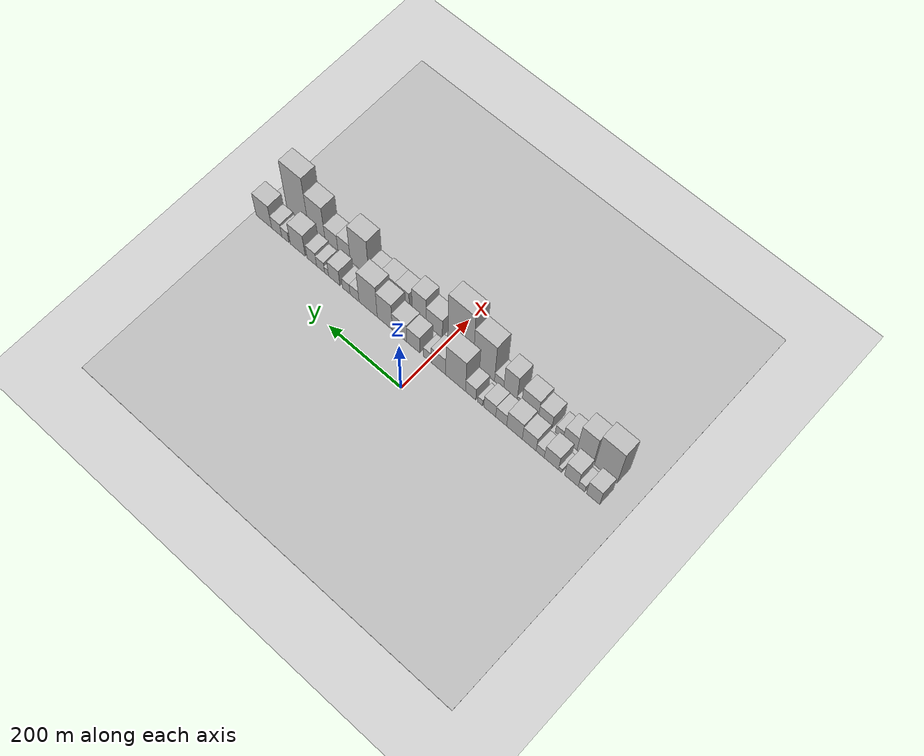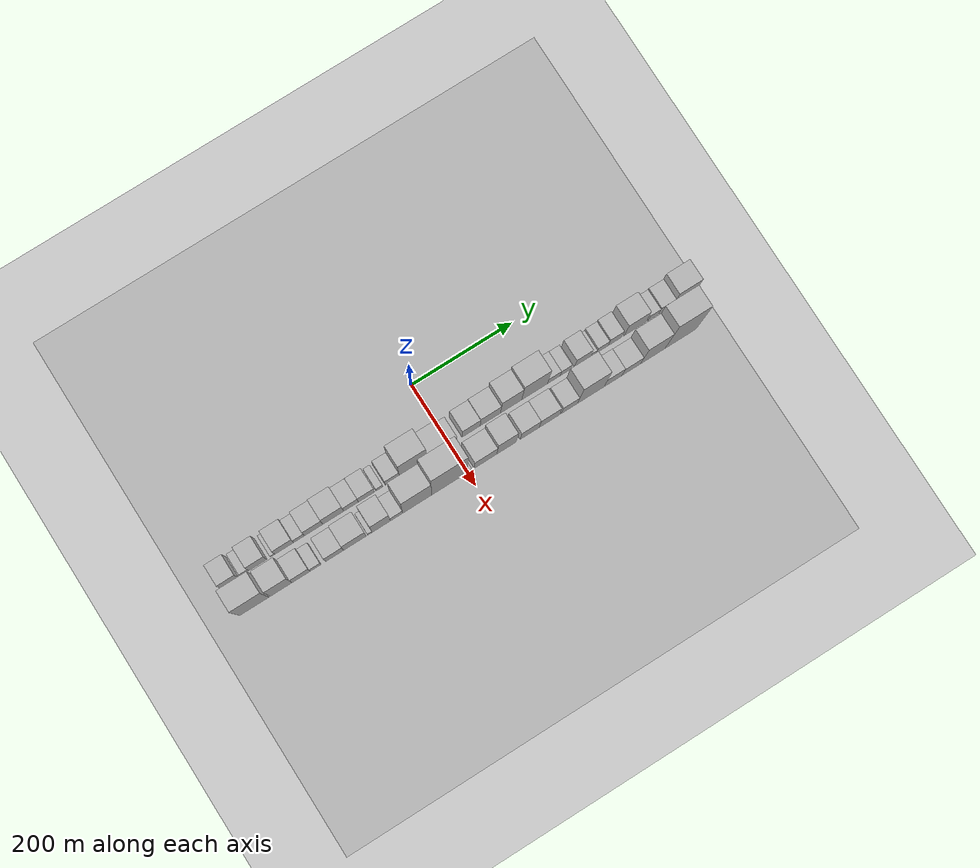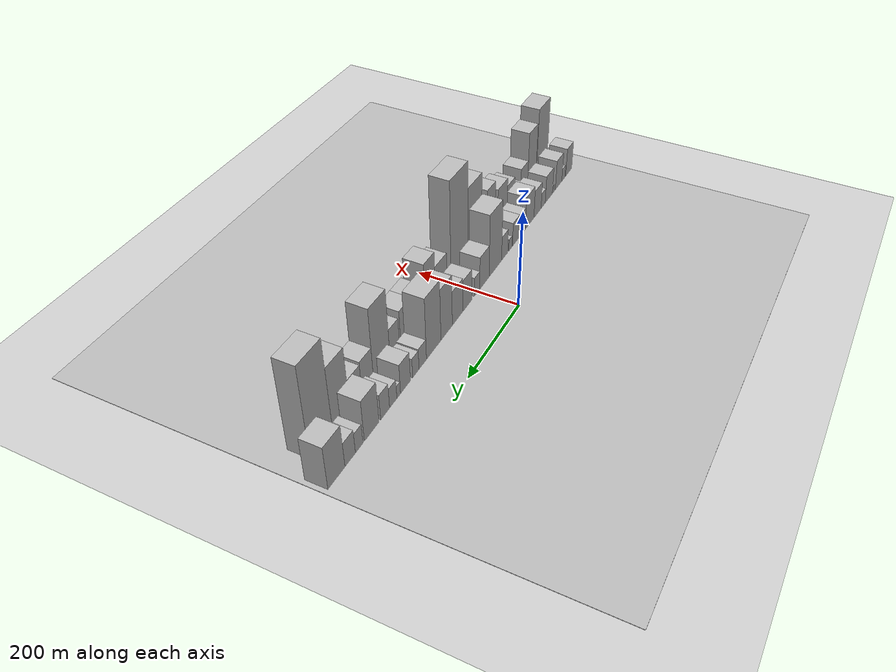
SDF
<sdf version="1.6">
 <world name="default">
  <include><name>ground_plane_1</name><uri>model://HANNAS_ground_plane</uri></include>
  <include>
   <name>ground_plane_2</name>
   <uri>model://HANNAS_ground_plane</uri>
   <pose>100 0 0  0 0 0</pose>
  </include>
  <model name="building_1">
   <static>1</static>
   <pose>100.0000 -429.2863 0 0.000000 0.000000 0.000000</pose>
   <link name="link">
    <pose>0 0 33.00 0 0 0</pose>
    <collision name="collision"><geometry><box><size>40.0000 33.4274 66.0000</size></box></geometry></collision>
    <visual name="visual">
     <cast_shadows>0</cast_shadows>
     <geometry><box><size>40.0000 33.4274 66.0000</size></box></geometry>
     <material>
      <script>
       <uri>model://HANNAS_wall/materials/scripts</uri>
       <uri>model://HANNAS_wall/materials/textures</uri>
       <name>vrc/HANNAS_wall</name>
      </script>
     </material>
    </visual>
   </link>
  </model>
  <model name="building_2">
   <static>1</static>
   <pose>100.0000 -400.2123 0 0.000000 0.000000 0.000000</pose>
   <link name="link">
    <pose>0 0 15.00 0 0 0</pose>
    <collision name="collision"><geometry><box><size>40.0000 16.7206 30.0000</size></box></geometry></collision>
    <visual name="visual">
     <cast_shadows>0</cast_shadows>
     <geometry><box><size>40.0000 16.7206 30.0000</size></box></geometry>
     <material>
      <script>
       <uri>model://HANNAS_wall/materials/scripts</uri>
       <uri>model://HANNAS_wall/materials/textures</uri>
       <name>vrc/HANNAS_wall</name>
      </script>
     </material>
    </visual>
   </link>
  </model>
  <model name="building_3">
   <static>1</static>
   <pose>100.0000 -374.4812 0 0.000000 0.000000 0.000000</pose>
   <link name="link">
    <pose>0 0 34.50 0 0 0</pose>
    <collision name="collision"><geometry><box><size>40.0000 34.7416 69.0000</size></box></geometry></collision>
    <visual name="visual">
     <cast_shadows>0</cast_shadows>
     <geometry><box><size>40.0000 34.7416 69.0000</size></box></geometry>
     <material>
      <script>
       <uri>model://HANNAS_wall/materials/scripts</uri>
       <uri>model://HANNAS_wall/materials/textures</uri>
       <name>vrc/HANNAS_wall</name>
      </script>
     </material>
    </visual>
   </link>
  </model>
  <model name="building_4">
   <static>1</static>
   <pose>100.0000 -345.8857 0 0.000000 0.000000 0.000000</pose>
   <link name="link">
    <pose>0 0 9.00 0 0 0</pose>
    <collision name="collision"><geometry><box><size>40.0000 8.4493 18.0000</size></box></geometry></collision>
    <visual name="visual">
     <cast_shadows>0</cast_shadows>
     <geometry><box><size>40.0000 8.4493 18.0000</size></box></geometry>
     <material>
      <script>
       <uri>model://HANNAS_wall/materials/scripts</uri>
       <uri>model://HANNAS_wall/materials/textures</uri>
       <name>vrc/HANNAS_wall</name>
      </script>
     </material>
    </visual>
   </link>
  </model>
  <model name="building_5">
   <static>1</static>
   <pose>100.0000 -323.3656 0 0.000000 0.000000 0.000000</pose>
   <link name="link">
    <pose>0 0 31.50 0 0 0</pose>
    <collision name="collision"><geometry><box><size>40.0000 36.5909 63.0000</size></box></geometry></collision>
    <visual name="visual">
     <cast_shadows>0</cast_shadows>
     <geometry><box><size>40.0000 36.5909 63.0000</size></box></geometry>
     <material>
      <script>
       <uri>model://HANNAS_wall/materials/scripts</uri>
       <uri>model://HANNAS_wall/materials/textures</uri>
       <name>vrc/HANNAS_wall</name>
      </script>
     </material>
    </visual>
   </link>
  </model>
  <model name="building_6">
   <static>1</static>
   <pose>100.0000 -294.5539 0 0.000000 0.000000 0.000000</pose>
   <link name="link">
    <pose>0 0 18.00 0 0 0</pose>
    <collision name="collision"><geometry><box><size>40.0000 21.0326 36.0000</size></box></geometry></collision>
    <visual name="visual">
     <cast_shadows>0</cast_shadows>
     <geometry><box><size>40.0000 21.0326 36.0000</size></box></geometry>
     <material>
      <script>
       <uri>model://HANNAS_wall/materials/scripts</uri>
       <uri>model://HANNAS_wall/materials/textures</uri>
       <name>vrc/HANNAS_wall</name>
      </script>
     </material>
    </visual>
   </link>
  </model>
  <model name="building_7">
   <static>1</static>
   <pose>100.0000 -266.2333 0 0.000000 0.000000 0.000000</pose>
   <link name="link">
    <pose>0 0 31.50 0 0 0</pose>
    <collision name="collision"><geometry><box><size>40.0000 35.6086 63.0000</size></box></geometry></collision>
    <visual name="visual">
     <cast_shadows>0</cast_shadows>
     <geometry><box><size>40.0000 35.6086 63.0000</size></box></geometry>
     <material>
      <script>
       <uri>model://HANNAS_wall/materials/scripts</uri>
       <uri>model://HANNAS_wall/materials/textures</uri>
       <name>vrc/HANNAS_wall</name>
      </script>
     </material>
    </visual>
   </link>
  </model>
  <model name="building_8">
   <static>1</static>
   <pose>100.0000 -228.0741 0 0.000000 0.000000 0.000000</pose>
   <link name="link">
    <pose>0 0 37.50 0 0 0</pose>
    <collision name="collision"><geometry><box><size>40.0000 40.7099 75.0000</size></box></geometry></collision>
    <visual name="visual">
     <cast_shadows>0</cast_shadows>
     <geometry><box><size>40.0000 40.7099 75.0000</size></box></geometry>
     <material>
      <script>
       <uri>model://HANNAS_wall/materials/scripts</uri>
       <uri>model://HANNAS_wall/materials/textures</uri>
       <name>vrc/HANNAS_wall</name>
      </script>
     </material>
    </visual>
   </link>
  </model>
  <model name="building_9">
   <static>1</static>
   <pose>100.0000 -193.3979 0 0.000000 0.000000 0.000000</pose>
   <link name="link">
    <pose>0 0 25.50 0 0 0</pose>
    <collision name="collision"><geometry><box><size>40.0000 28.6425 51.0000</size></box></geometry></collision>
    <visual name="visual">
     <cast_shadows>0</cast_shadows>
     <geometry><box><size>40.0000 28.6425 51.0000</size></box></geometry>
     <material>
      <script>
       <uri>model://HANNAS_wall/materials/scripts</uri>
       <uri>model://HANNAS_wall/materials/textures</uri>
       <name>vrc/HANNAS_wall</name>
      </script>
     </material>
    </visual>
   </link>
  </model>
  <model name="building_10">
   <static>1</static>
   <pose>100.0000 -163.3479 0 0.000000 0.000000 0.000000</pose>
   <link name="link">
    <pose>0 0 27.00 0 0 0</pose>
    <collision name="collision"><geometry><box><size>40.0000 31.4576 54.0000</size></box></geometry></collision>
    <visual name="visual">
     <cast_shadows>0</cast_shadows>
     <geometry><box><size>40.0000 31.4576 54.0000</size></box></geometry>
     <material>
      <script>
       <uri>model://HANNAS_wall/materials/scripts</uri>
       <uri>model://HANNAS_wall/materials/textures</uri>
       <name>vrc/HANNAS_wall</name>
      </script>
     </material>
    </visual>
   </link>
  </model>
  <model name="building_11">
   <static>1</static>
   <pose>100.0000 -137.9995 0 0.000000 0.000000 0.000000</pose>
   <link name="link">
    <pose>0 0 13.50 0 0 0</pose>
    <collision name="collision"><geometry><box><size>40.0000 13.2390 27.0000</size></box></geometry></collision>
    <visual name="visual">
     <cast_shadows>0</cast_shadows>
     <geometry><box><size>40.0000 13.2390 27.0000</size></box></geometry>
     <material>
      <script>
       <uri>model://HANNAS_wall/materials/scripts</uri>
       <uri>model://HANNAS_wall/materials/textures</uri>
       <name>vrc/HANNAS_wall</name>
      </script>
     </material>
    </visual>
   </link>
  </model>
  <model name="building_12">
   <static>1</static>
   <pose>100.0000 -112.6951 0 0.000000 0.000000 0.000000</pose>
   <link name="link">
    <pose>0 0 27.00 0 0 0</pose>
    <collision name="collision"><geometry><box><size>40.0000 27.3698 54.0000</size></box></geometry></collision>
    <visual name="visual">
     <cast_shadows>0</cast_shadows>
     <geometry><box><size>40.0000 27.3698 54.0000</size></box></geometry>
     <material>
      <script>
       <uri>model://HANNAS_wall/materials/scripts</uri>
       <uri>model://HANNAS_wall/materials/textures</uri>
       <name>vrc/HANNAS_wall</name>
      </script>
     </material>
    </visual>
   </link>
  </model>
  <model name="building_13">
   <static>1</static>
   <pose>100.0000 -72.3519 0 0.000000 0.000000 0.000000</pose>
   <link name="link">
    <pose>0 0 69.00 0 0 0</pose>
    <collision name="collision"><geometry><box><size>40.0000 53.3167 138.0000</size></box></geometry></collision>
    <visual name="visual">
     <cast_shadows>0</cast_shadows>
     <geometry><box><size>40.0000 53.3167 138.0000</size></box></geometry>
     <material>
      <script>
       <uri>model://HANNAS_wall/materials/scripts</uri>
       <uri>model://HANNAS_wall/materials/textures</uri>
       <name>vrc/HANNAS_wall</name>
      </script>
     </material>
    </visual>
   </link>
  </model>
  <model name="building_14">
   <static>1</static>
   <pose>100.0000 -26.2817 0 0.000000 0.000000 0.000000</pose>
   <link name="link">
    <pose>0 0 36.00 0 0 0</pose>
    <collision name="collision"><geometry><box><size>40.0000 38.8238 72.0000</size></box></geometry></collision>
    <visual name="visual">
     <cast_shadows>0</cast_shadows>
     <geometry><box><size>40.0000 38.8238 72.0000</size></box></geometry>
     <material>
      <script>
       <uri>model://HANNAS_wall/materials/scripts</uri>
       <uri>model://HANNAS_wall/materials/textures</uri>
       <name>vrc/HANNAS_wall</name>
      </script>
     </material>
    </visual>
   </link>
  </model>
  <model name="building_15">
   <static>1</static>
   <pose>100.0000 3.7710 0 0.000000 0.000000 0.000000</pose>
   <link name="link">
    <pose>0 0 21.00 0 0 0</pose>
    <collision name="collision"><geometry><box><size>40.0000 21.2816 42.0000</size></box></geometry></collision>
    <visual name="visual">
     <cast_shadows>0</cast_shadows>
     <geometry><box><size>40.0000 21.2816 42.0000</size></box></geometry>
     <material>
      <script>
       <uri>model://HANNAS_wall/materials/scripts</uri>
       <uri>model://HANNAS_wall/materials/textures</uri>
       <name>vrc/HANNAS_wall</name>
      </script>
     </material>
    </visual>
   </link>
  </model>
  <model name="building_16">
   <static>1</static>
   <pose>100.0000 42.2274 0 0.000000 0.000000 0.000000</pose>
   <link name="link">
    <pose>0 0 34.50 0 0 0</pose>
    <collision name="collision"><geometry><box><size>40.0000 35.6311 69.0000</size></box></geometry></collision>
    <visual name="visual">
     <cast_shadows>0</cast_shadows>
     <geometry><box><size>40.0000 35.6311 69.0000</size></box></geometry>
     <material>
      <script>
       <uri>model://HANNAS_wall/materials/scripts</uri>
       <uri>model://HANNAS_wall/materials/textures</uri>
       <name>vrc/HANNAS_wall</name>
      </script>
     </material>
    </visual>
   </link>
  </model>
  <model name="building_17">
   <static>1</static>
   <pose>100.0000 80.1583 0 0.000000 0.000000 0.000000</pose>
   <link name="link">
    <pose>0 0 37.50 0 0 0</pose>
    <collision name="collision"><geometry><box><size>40.0000 40.2308 75.0000</size></box></geometry></collision>
    <visual name="visual">
     <cast_shadows>0</cast_shadows>
     <geometry><box><size>40.0000 40.2308 75.0000</size></box></geometry>
     <material>
      <script>
       <uri>model://HANNAS_wall/materials/scripts</uri>
       <uri>model://HANNAS_wall/materials/textures</uri>
       <name>vrc/HANNAS_wall</name>
      </script>
     </material>
    </visual>
   </link>
  </model>
  <model name="building_18">
   <static>1</static>
   <pose>100.0000 121.1913 0 0.000000 0.000000 0.000000</pose>
   <link name="link">
    <pose>0 0 55.50 0 0 0</pose>
    <collision name="collision"><geometry><box><size>40.0000 41.8353 111.0000</size></box></geometry></collision>
    <visual name="visual">
     <cast_shadows>0</cast_shadows>
     <geometry><box><size>40.0000 41.8353 111.0000</size></box></geometry>
     <material>
      <script>
       <uri>model://HANNAS_wall/materials/scripts</uri>
       <uri>model://HANNAS_wall/materials/textures</uri>
       <name>vrc/HANNAS_wall</name>
      </script>
     </material>
    </visual>
   </link>
  </model>
  <model name="building_19">
   <static>1</static>
   <pose>100.0000 167.7243 0 0.000000 0.000000 0.000000</pose>
   <link name="link">
    <pose>0 0 66.00 0 0 0</pose>
    <collision name="collision"><geometry><box><size>40.0000 51.2308 132.0000</size></box></geometry></collision>
    <visual name="visual">
     <cast_shadows>0</cast_shadows>
     <geometry><box><size>40.0000 51.2308 132.0000</size></box></geometry>
     <material>
      <script>
       <uri>model://HANNAS_wall/materials/scripts</uri>
       <uri>model://HANNAS_wall/materials/textures</uri>
       <name>vrc/HANNAS_wall</name>
      </script>
     </material>
    </visual>
   </link>
  </model>
  <model name="building_20">
   <static>1</static>
   <pose>100.0000 206.1125 0 0.000000 0.000000 0.000000</pose>
   <link name="link">
    <pose>0 0 22.50 0 0 0</pose>
    <collision name="collision"><geometry><box><size>40.0000 25.5456 45.0000</size></box></geometry></collision>
    <visual name="visual">
     <cast_shadows>0</cast_shadows>
     <geometry><box><size>40.0000 25.5456 45.0000</size></box></geometry>
     <material>
      <script>
       <uri>model://HANNAS_wall/materials/scripts</uri>
       <uri>model://HANNAS_wall/materials/textures</uri>
       <name>vrc/HANNAS_wall</name>
      </script>
     </material>
    </visual>
   </link>
  </model>
  <model name="building_21">
   <static>1</static>
   <pose>100.0000 229.5717 0 0.000000 0.000000 0.000000</pose>
   <link name="link">
    <pose>0 0 21.00 0 0 0</pose>
    <collision name="collision"><geometry><box><size>40.0000 21.3728 42.0000</size></box></geometry></collision>
    <visual name="visual">
     <cast_shadows>0</cast_shadows>
     <geometry><box><size>40.0000 21.3728 42.0000</size></box></geometry>
     <material>
      <script>
       <uri>model://HANNAS_wall/materials/scripts</uri>
       <uri>model://HANNAS_wall/materials/textures</uri>
       <name>vrc/HANNAS_wall</name>
      </script>
     </material>
    </visual>
   </link>
  </model>
  <model name="building_22">
   <static>1</static>
   <pose>100.0000 263.5157 0 0.000000 0.000000 0.000000</pose>
   <link name="link">
    <pose>0 0 31.50 0 0 0</pose>
    <collision name="collision"><geometry><box><size>40.0000 32.5150 63.0000</size></box></geometry></collision>
    <visual name="visual">
     <cast_shadows>0</cast_shadows>
     <geometry><box><size>40.0000 32.5150 63.0000</size></box></geometry>
     <material>
      <script>
       <uri>model://HANNAS_wall/materials/scripts</uri>
       <uri>model://HANNAS_wall/materials/textures</uri>
       <name>vrc/HANNAS_wall</name>
      </script>
     </material>
    </visual>
   </link>
  </model>
  <model name="building_23">
   <static>1</static>
   <pose>100.0000 285.5890 0 0.000000 0.000000 0.000000</pose>
   <link name="link">
    <pose>0 0 13.50 0 0 0</pose>
    <collision name="collision"><geometry><box><size>40.0000 11.6316 27.0000</size></box></geometry></collision>
    <visual name="visual">
     <cast_shadows>0</cast_shadows>
     <geometry><box><size>40.0000 11.6316 27.0000</size></box></geometry>
     <material>
      <script>
       <uri>model://HANNAS_wall/materials/scripts</uri>
       <uri>model://HANNAS_wall/materials/textures</uri>
       <name>vrc/HANNAS_wall</name>
      </script>
     </material>
    </visual>
   </link>
  </model>
  <model name="building_24">
   <static>1</static>
   <pose>100.0000 302.9131 0 0.000000 0.000000 0.000000</pose>
   <link name="link">
    <pose>0 0 21.00 0 0 0</pose>
    <collision name="collision"><geometry><box><size>40.0000 23.0168 42.0000</size></box></geometry></collision>
    <visual name="visual">
     <cast_shadows>0</cast_shadows>
     <geometry><box><size>40.0000 23.0168 42.0000</size></box></geometry>
     <material>
      <script>
       <uri>model://HANNAS_wall/materials/scripts</uri>
       <uri>model://HANNAS_wall/materials/textures</uri>
       <name>vrc/HANNAS_wall</name>
      </script>
     </material>
    </visual>
   </link>
  </model>
  <model name="building_25">
   <static>1</static>
   <pose>100.0000 328.1333 0 0.000000 0.000000 0.000000</pose>
   <link name="link">
    <pose>0 0 27.00 0 0 0</pose>
    <collision name="collision"><geometry><box><size>40.0000 27.4235 54.0000</size></box></geometry></collision>
    <visual name="visual">
     <cast_shadows>0</cast_shadows>
     <geometry><box><size>40.0000 27.4235 54.0000</size></box></geometry>
     <material>
      <script>
       <uri>model://HANNAS_wall/materials/scripts</uri>
       <uri>model://HANNAS_wall/materials/textures</uri>
       <name>vrc/HANNAS_wall</name>
      </script>
     </material>
    </visual>
   </link>
  </model>
  <model name="building_26">
   <static>1</static>
   <pose>100.0000 368.6123 0 0.000000 0.000000 0.000000</pose>
   <link name="link">
    <pose>0 0 43.50 0 0 0</pose>
    <collision name="collision"><geometry><box><size>40.0000 43.5346 87.0000</size></box></geometry></collision>
    <visual name="visual">
     <cast_shadows>0</cast_shadows>
     <geometry><box><size>40.0000 43.5346 87.0000</size></box></geometry>
     <material>
      <script>
       <uri>model://HANNAS_wall/materials/scripts</uri>
       <uri>model://HANNAS_wall/materials/textures</uri>
       <name>vrc/HANNAS_wall</name>
      </script>
     </material>
    </visual>
   </link>
  </model>
  <model name="building_27">
   <static>1</static>
   <pose>100.0000 405.0884 0 0.000000 0.000000 0.000000</pose>
   <link name="link">
    <pose>0 0 21.00 0 0 0</pose>
    <collision name="collision"><geometry><box><size>40.0000 21.4176 42.0000</size></box></geometry></collision>
    <visual name="visual">
     <cast_shadows>0</cast_shadows>
     <geometry><box><size>40.0000 21.4176 42.0000</size></box></geometry>
     <material>
      <script>
       <uri>model://HANNAS_wall/materials/scripts</uri>
       <uri>model://HANNAS_wall/materials/textures</uri>
       <name>vrc/HANNAS_wall</name>
      </script>
     </material>
    </visual>
   </link>
  </model>
  <model name="building_28">
   <static>1</static>
   <pose>100.0000 430.4608 0 0.000000 0.000000 0.000000</pose>
   <link name="link">
    <pose>0 0 25.50 0 0 0</pose>
    <collision name="collision"><geometry><box><size>40.0000 29.3272 51.0000</size></box></geometry></collision>
    <visual name="visual">
     <cast_shadows>0</cast_shadows>
     <geometry><box><size>40.0000 29.3272 51.0000</size></box></geometry>
     <material>
      <script>
       <uri>model://HANNAS_wall/materials/scripts</uri>
       <uri>model://HANNAS_wall/materials/textures</uri>
       <name>vrc/HANNAS_wall</name>
      </script>
     </material>
    </visual>
   </link>
  </model>
  <model name="building_29">
   <static>1</static>
   <pose>100.0000 468.2892 0 0.000000 0.000000 0.000000</pose>
   <link name="link">
    <pose>0 0 45.00 0 0 0</pose>
    <collision name="collision"><geometry><box><size>40.0000 46.3296 90.0000</size></box></geometry></collision>
    <visual name="visual">
     <cast_shadows>0</cast_shadows>
     <geometry><box><size>40.0000 46.3296 90.0000</size></box></geometry>
     <material>
      <script>
       <uri>model://HANNAS_wall/materials/scripts</uri>
       <uri>model://HANNAS_wall/materials/textures</uri>
       <name>vrc/HANNAS_wall</name>
      </script>
     </material>
    </visual>
   </link>
  </model>
  <model name="building_30">
   <static>1</static>
   <pose>155.0000 -414.8546 0 0.000000 0.000000 0.000000</pose>
   <link name="link">
    <pose>0 0 78.00 0 0 0</pose>
    <collision name="collision"><geometry><box><size>40.0000 56.2908 156.0000</size></box></geometry></collision>
    <visual name="visual">
     <cast_shadows>0</cast_shadows>
     <geometry><box><size>40.0000 56.2908 156.0000</size></box></geometry>
     <material>
      <script>
       <uri>model://HANNAS_wall/materials/scripts</uri>
       <uri>model://HANNAS_wall/materials/textures</uri>
       <name>vrc/HANNAS_wall</name>
      </script>
     </material>
    </visual>
   </link>
  </model>
  <model name="building_31">
   <static>1</static>
   <pose>155.0000 -362.7758 0 0.000000 0.000000 0.000000</pose>
   <link name="link">
    <pose>0 0 63.00 0 0 0</pose>
    <collision name="collision"><geometry><box><size>40.0000 41.8667 126.0000</size></box></geometry></collision>
    <visual name="visual">
     <cast_shadows>0</cast_shadows>
     <geometry><box><size>40.0000 41.8667 126.0000</size></box></geometry>
     <material>
      <script>
       <uri>model://HANNAS_wall/materials/scripts</uri>
       <uri>model://HANNAS_wall/materials/textures</uri>
       <name>vrc/HANNAS_wall</name>
      </script>
     </material>
    </visual>
   </link>
  </model>
  <model name="building_32">
   <static>1</static>
   <pose>155.0000 -324.3826 0 0.000000 0.000000 0.000000</pose>
   <link name="link">
    <pose>0 0 31.50 0 0 0</pose>
    <collision name="collision"><geometry><box><size>40.0000 34.9198 63.0000</size></box></geometry></collision>
    <visual name="visual">
     <cast_shadows>0</cast_shadows>
     <geometry><box><size>40.0000 34.9198 63.0000</size></box></geometry>
     <material>
      <script>
       <uri>model://HANNAS_wall/materials/scripts</uri>
       <uri>model://HANNAS_wall/materials/textures</uri>
       <name>vrc/HANNAS_wall</name>
      </script>
     </material>
    </visual>
   </link>
  </model>
  <model name="building_33">
   <static>1</static>
   <pose>155.0000 -296.4682 0 0.000000 0.000000 0.000000</pose>
   <link name="link">
    <pose>0 0 18.00 0 0 0</pose>
    <collision name="collision"><geometry><box><size>40.0000 20.9091 36.0000</size></box></geometry></collision>
    <visual name="visual">
     <cast_shadows>0</cast_shadows>
     <geometry><box><size>40.0000 20.9091 36.0000</size></box></geometry>
     <material>
      <script>
       <uri>model://HANNAS_wall/materials/scripts</uri>
       <uri>model://HANNAS_wall/materials/textures</uri>
       <name>vrc/HANNAS_wall</name>
      </script>
     </material>
    </visual>
   </link>
  </model>
  <model name="building_34">
   <static>1</static>
   <pose>155.0000 -259.5407 0 0.000000 0.000000 0.000000</pose>
   <link name="link">
    <pose>0 0 31.50 0 0 0</pose>
    <collision name="collision"><geometry><box><size>40.0000 34.9460 63.0000</size></box></geometry></collision>
    <visual name="visual">
     <cast_shadows>0</cast_shadows>
     <geometry><box><size>40.0000 34.9460 63.0000</size></box></geometry>
     <material>
      <script>
       <uri>model://HANNAS_wall/materials/scripts</uri>
       <uri>model://HANNAS_wall/materials/textures</uri>
       <name>vrc/HANNAS_wall</name>
      </script>
     </material>
    </visual>
   </link>
  </model>
  <model name="building_35">
   <static>1</static>
   <pose>155.0000 -220.1477 0 0.000000 0.000000 0.000000</pose>
   <link name="link">
    <pose>0 0 40.50 0 0 0</pose>
    <collision name="collision"><geometry><box><size>40.0000 43.8399 81.0000</size></box></geometry></collision>
    <visual name="visual">
     <cast_shadows>0</cast_shadows>
     <geometry><box><size>40.0000 43.8399 81.0000</size></box></geometry>
     <material>
      <script>
       <uri>model://HANNAS_wall/materials/scripts</uri>
       <uri>model://HANNAS_wall/materials/textures</uri>
       <name>vrc/HANNAS_wall</name>
      </script>
     </material>
    </visual>
   </link>
  </model>
  <model name="building_36">
   <static>1</static>
   <pose>155.0000 -190.9524 0 0.000000 0.000000 0.000000</pose>
   <link name="link">
    <pose>0 0 10.50 0 0 0</pose>
    <collision name="collision"><geometry><box><size>40.0000 8.5508 21.0000</size></box></geometry></collision>
    <visual name="visual">
     <cast_shadows>0</cast_shadows>
     <geometry><box><size>40.0000 8.5508 21.0000</size></box></geometry>
     <material>
      <script>
       <uri>model://HANNAS_wall/materials/scripts</uri>
       <uri>model://HANNAS_wall/materials/textures</uri>
       <name>vrc/HANNAS_wall</name>
      </script>
     </material>
    </visual>
   </link>
  </model>
  <model name="building_37">
   <static>1</static>
   <pose>155.0000 -168.8584 0 0.000000 0.000000 0.000000</pose>
   <link name="link">
    <pose>0 0 54.00 0 0 0</pose>
    <collision name="collision"><geometry><box><size>40.0000 35.6371 108.0000</size></box></geometry></collision>
    <visual name="visual">
     <cast_shadows>0</cast_shadows>
     <geometry><box><size>40.0000 35.6371 108.0000</size></box></geometry>
     <material>
      <script>
       <uri>model://HANNAS_wall/materials/scripts</uri>
       <uri>model://HANNAS_wall/materials/textures</uri>
       <name>vrc/HANNAS_wall</name>
      </script>
     </material>
    </visual>
   </link>
  </model>
  <model name="building_38">
   <static>1</static>
   <pose>155.0000 -138.8977 0 0.000000 0.000000 0.000000</pose>
   <link name="link">
    <pose>0 0 21.00 0 0 0</pose>
    <collision name="collision"><geometry><box><size>40.0000 24.2845 42.0000</size></box></geometry></collision>
    <visual name="visual">
     <cast_shadows>0</cast_shadows>
     <geometry><box><size>40.0000 24.2845 42.0000</size></box></geometry>
     <material>
      <script>
       <uri>model://HANNAS_wall/materials/scripts</uri>
       <uri>model://HANNAS_wall/materials/textures</uri>
       <name>vrc/HANNAS_wall</name>
      </script>
     </material>
    </visual>
   </link>
  </model>
  <model name="building_39">
   <static>1</static>
   <pose>155.0000 -98.4309 0 0.000000 0.000000 0.000000</pose>
   <link name="link">
    <pose>0 0 81.00 0 0 0</pose>
    <collision name="collision"><geometry><box><size>40.0000 56.6491 162.0000</size></box></geometry></collision>
    <visual name="visual">
     <cast_shadows>0</cast_shadows>
     <geometry><box><size>40.0000 56.6491 162.0000</size></box></geometry>
     <material>
      <script>
       <uri>model://HANNAS_wall/materials/scripts</uri>
       <uri>model://HANNAS_wall/materials/textures</uri>
       <name>vrc/HANNAS_wall</name>
      </script>
     </material>
    </visual>
   </link>
  </model>
  <model name="building_40">
   <static>1</static>
   <pose>155.0000 -35.7214 0 0.000000 0.000000 0.000000</pose>
   <link name="link">
    <pose>0 0 109.50 0 0 0</pose>
    <collision name="collision"><geometry><box><size>40.0000 68.7698 219.0000</size></box></geometry></collision>
    <visual name="visual">
     <cast_shadows>0</cast_shadows>
     <geometry><box><size>40.0000 68.7698 219.0000</size></box></geometry>
     <material>
      <script>
       <uri>model://HANNAS_wall/materials/scripts</uri>
       <uri>model://HANNAS_wall/materials/textures</uri>
       <name>vrc/HANNAS_wall</name>
      </script>
     </material>
    </visual>
   </link>
  </model>
  <model name="building_41">
   <static>1</static>
   <pose>155.0000 3.6199 0 0.000000 0.000000 0.000000</pose>
   <link name="link">
    <pose>0 0 10.50 0 0 0</pose>
    <collision name="collision"><geometry><box><size>40.0000 9.9127 21.0000</size></box></geometry></collision>
    <visual name="visual">
     <cast_shadows>0</cast_shadows>
     <geometry><box><size>40.0000 9.9127 21.0000</size></box></geometry>
     <material>
      <script>
       <uri>model://HANNAS_wall/materials/scripts</uri>
       <uri>model://HANNAS_wall/materials/textures</uri>
       <name>vrc/HANNAS_wall</name>
      </script>
     </material>
    </visual>
   </link>
  </model>
  <model name="building_42">
   <static>1</static>
   <pose>155.0000 35.7970 0 0.000000 0.000000 0.000000</pose>
   <link name="link">
    <pose>0 0 39.00 0 0 0</pose>
    <collision name="collision"><geometry><box><size>40.0000 44.4415 78.0000</size></box></geometry></collision>
    <visual name="visual">
     <cast_shadows>0</cast_shadows>
     <geometry><box><size>40.0000 44.4415 78.0000</size></box></geometry>
     <material>
      <script>
       <uri>model://HANNAS_wall/materials/scripts</uri>
       <uri>model://HANNAS_wall/materials/textures</uri>
       <name>vrc/HANNAS_wall</name>
      </script>
     </material>
    </visual>
   </link>
  </model>
  <model name="building_43">
   <static>1</static>
   <pose>155.0000 77.1066 0 0.000000 0.000000 0.000000</pose>
   <link name="link">
    <pose>0 0 55.50 0 0 0</pose>
    <collision name="collision"><geometry><box><size>40.0000 38.1777 111.0000</size></box></geometry></collision>
    <visual name="visual">
     <cast_shadows>0</cast_shadows>
     <geometry><box><size>40.0000 38.1777 111.0000</size></box></geometry>
     <material>
      <script>
       <uri>model://HANNAS_wall/materials/scripts</uri>
       <uri>model://HANNAS_wall/materials/textures</uri>
       <name>vrc/HANNAS_wall</name>
      </script>
     </material>
    </visual>
   </link>
  </model>
  <model name="building_44">
   <static>1</static>
   <pose>155.0000 123.1513 0 0.000000 0.000000 0.000000</pose>
   <link name="link">
    <pose>0 0 37.50 0 0 0</pose>
    <collision name="collision"><geometry><box><size>40.0000 37.9117 75.0000</size></box></geometry></collision>
    <visual name="visual">
     <cast_shadows>0</cast_shadows>
     <geometry><box><size>40.0000 37.9117 75.0000</size></box></geometry>
     <material>
      <script>
       <uri>model://HANNAS_wall/materials/scripts</uri>
       <uri>model://HANNAS_wall/materials/textures</uri>
       <name>vrc/HANNAS_wall</name>
      </script>
     </material>
    </visual>
   </link>
  </model>
  <model name="building_45">
   <static>1</static>
   <pose>155.0000 161.9922 0 0.000000 0.000000 0.000000</pose>
   <link name="link">
    <pose>0 0 37.50 0 0 0</pose>
    <collision name="collision"><geometry><box><size>40.0000 39.7702 75.0000</size></box></geometry></collision>
    <visual name="visual">
     <cast_shadows>0</cast_shadows>
     <geometry><box><size>40.0000 39.7702 75.0000</size></box></geometry>
     <material>
      <script>
       <uri>model://HANNAS_wall/materials/scripts</uri>
       <uri>model://HANNAS_wall/materials/textures</uri>
       <name>vrc/HANNAS_wall</name>
      </script>
     </material>
    </visual>
   </link>
  </model>
  <model name="building_46">
   <static>1</static>
   <pose>155.0000 201.7746 0 0.000000 0.000000 0.000000</pose>
   <link name="link">
    <pose>0 0 31.50 0 0 0</pose>
    <collision name="collision"><geometry><box><size>40.0000 31.7946 63.0000</size></box></geometry></collision>
    <visual name="visual">
     <cast_shadows>0</cast_shadows>
     <geometry><box><size>40.0000 31.7946 63.0000</size></box></geometry>
     <material>
      <script>
       <uri>model://HANNAS_wall/materials/scripts</uri>
       <uri>model://HANNAS_wall/materials/textures</uri>
       <name>vrc/HANNAS_wall</name>
      </script>
     </material>
    </visual>
   </link>
  </model>
  <model name="building_47">
   <static>1</static>
   <pose>155.0000 244.1856 0 0.000000 0.000000 0.000000</pose>
   <link name="link">
    <pose>0 0 75.00 0 0 0</pose>
    <collision name="collision"><geometry><box><size>40.0000 53.0274 150.0000</size></box></geometry></collision>
    <visual name="visual">
     <cast_shadows>0</cast_shadows>
     <geometry><box><size>40.0000 53.0274 150.0000</size></box></geometry>
     <material>
      <script>
       <uri>model://HANNAS_wall/materials/scripts</uri>
       <uri>model://HANNAS_wall/materials/textures</uri>
       <name>vrc/HANNAS_wall</name>
      </script>
     </material>
    </visual>
   </link>
  </model>
  <model name="building_48">
   <static>1</static>
   <pose>155.0000 288.5255 0 0.000000 0.000000 0.000000</pose>
   <link name="link">
    <pose>0 0 34.50 0 0 0</pose>
    <collision name="collision"><geometry><box><size>40.0000 35.6524 69.0000</size></box></geometry></collision>
    <visual name="visual">
     <cast_shadows>0</cast_shadows>
     <geometry><box><size>40.0000 35.6524 69.0000</size></box></geometry>
     <material>
      <script>
       <uri>model://HANNAS_wall/materials/scripts</uri>
       <uri>model://HANNAS_wall/materials/textures</uri>
       <name>vrc/HANNAS_wall</name>
      </script>
     </material>
    </visual>
   </link>
  </model>
  <model name="building_49">
   <static>1</static>
   <pose>155.0000 324.8521 0 0.000000 0.000000 0.000000</pose>
   <link name="link">
    <pose>0 0 31.50 0 0 0</pose>
    <collision name="collision"><geometry><box><size>40.0000 37.0007 63.0000</size></box></geometry></collision>
    <visual name="visual">
     <cast_shadows>0</cast_shadows>
     <geometry><box><size>40.0000 37.0007 63.0000</size></box></geometry>
     <material>
      <script>
       <uri>model://HANNAS_wall/materials/scripts</uri>
       <uri>model://HANNAS_wall/materials/textures</uri>
       <name>vrc/HANNAS_wall</name>
      </script>
     </material>
    </visual>
   </link>
  </model>
  <model name="building_50">
   <static>1</static>
   <pose>155.0000 367.9426 0 0.000000 0.000000 0.000000</pose>
   <link name="link">
    <pose>0 0 66.00 0 0 0</pose>
    <collision name="collision"><geometry><box><size>40.0000 49.1803 132.0000</size></box></geometry></collision>
    <visual name="visual">
     <cast_shadows>0</cast_shadows>
     <geometry><box><size>40.0000 49.1803 132.0000</size></box></geometry>
     <material>
      <script>
       <uri>model://HANNAS_wall/materials/scripts</uri>
       <uri>model://HANNAS_wall/materials/textures</uri>
       <name>vrc/HANNAS_wall</name>
      </script>
     </material>
    </visual>
   </link>
  </model>
  <model name="building_51">
   <static>1</static>
   <pose>155.0000 423.8892 0 0.000000 0.000000 0.000000</pose>
   <link name="link">
    <pose>0 0 96.00 0 0 0</pose>
    <collision name="collision"><geometry><box><size>40.0000 62.7130 192.0000</size></box></geometry></collision>
    <visual name="visual">
     <cast_shadows>0</cast_shadows>
     <geometry><box><size>40.0000 62.7130 192.0000</size></box></geometry>
     <material>
      <script>
       <uri>model://HANNAS_wall/materials/scripts</uri>
       <uri>model://HANNAS_wall/materials/textures</uri>
       <name>vrc/HANNAS_wall</name>
      </script>
     </material>
    </visual>
   </link>
  </model>
 </world>
</sdf>
